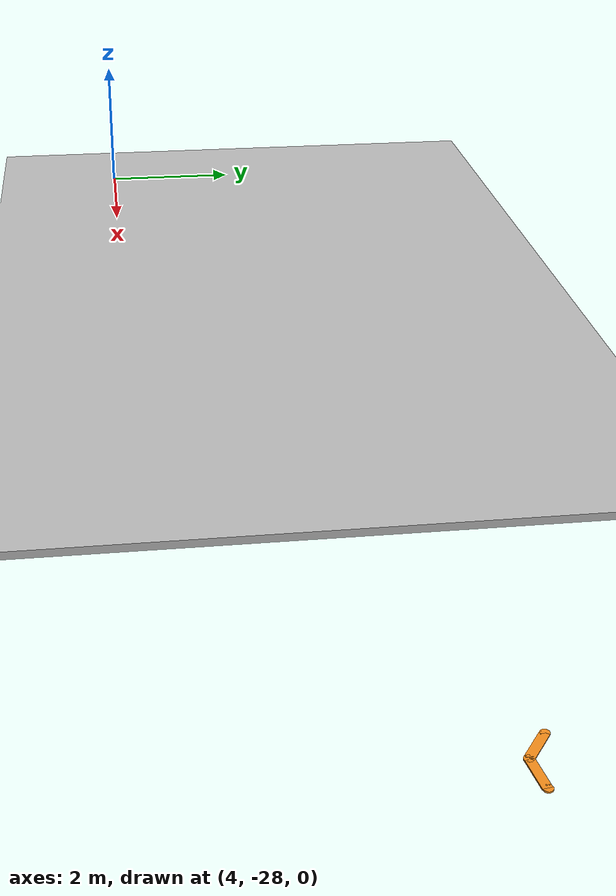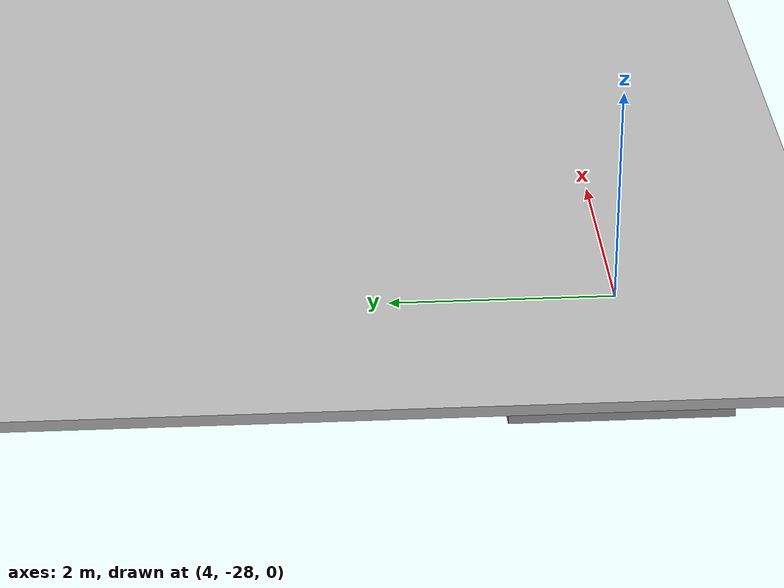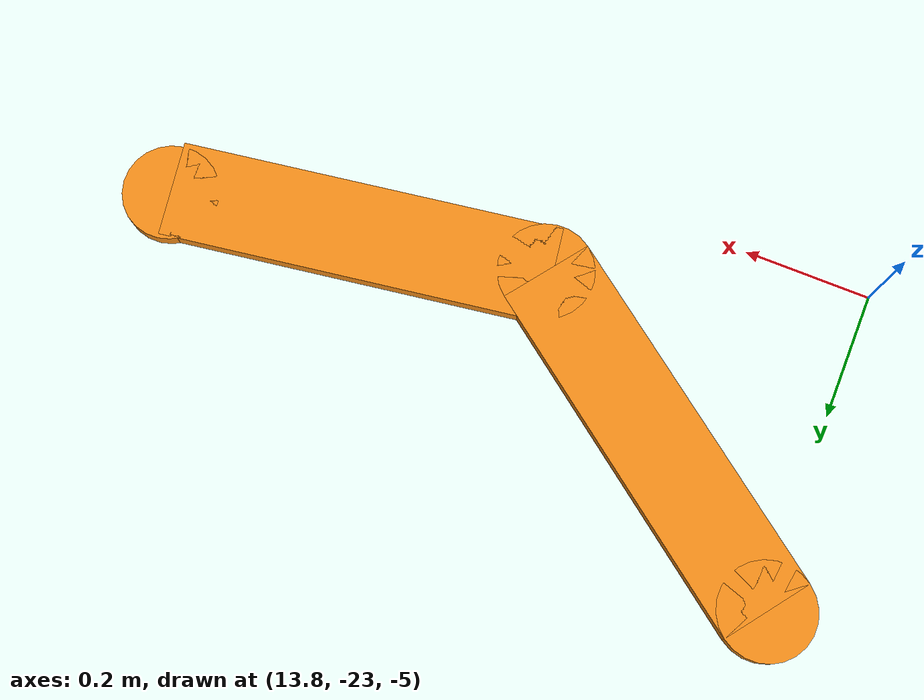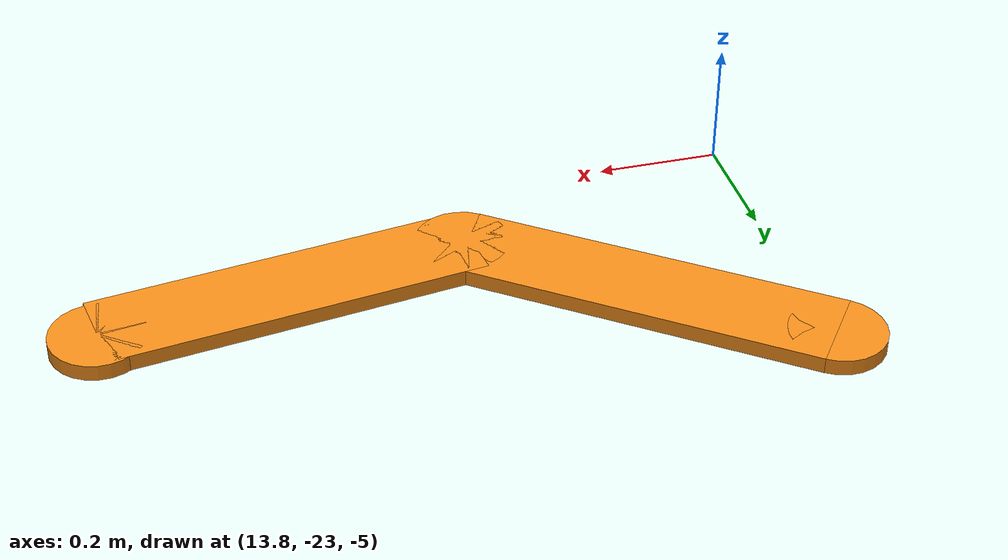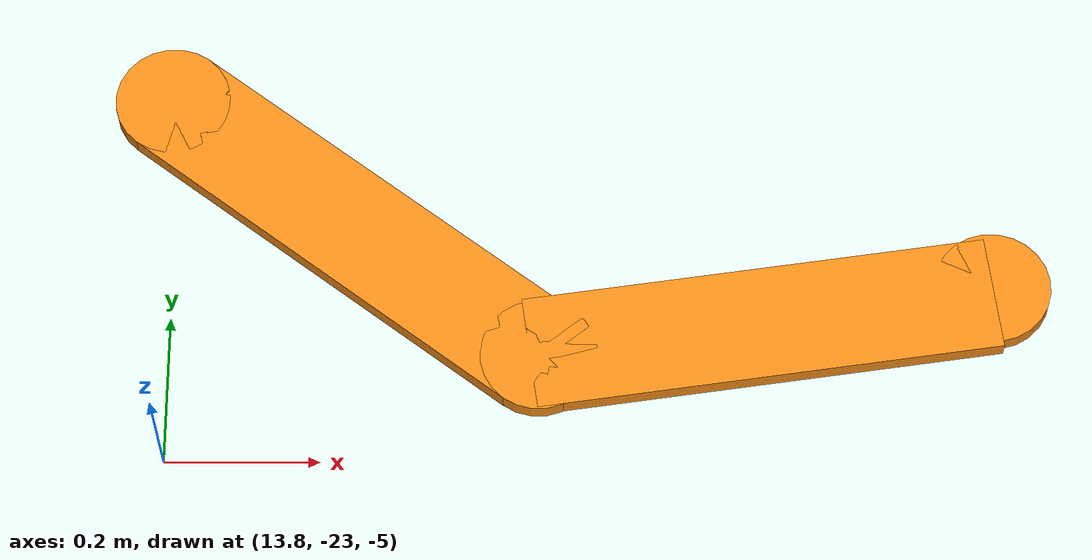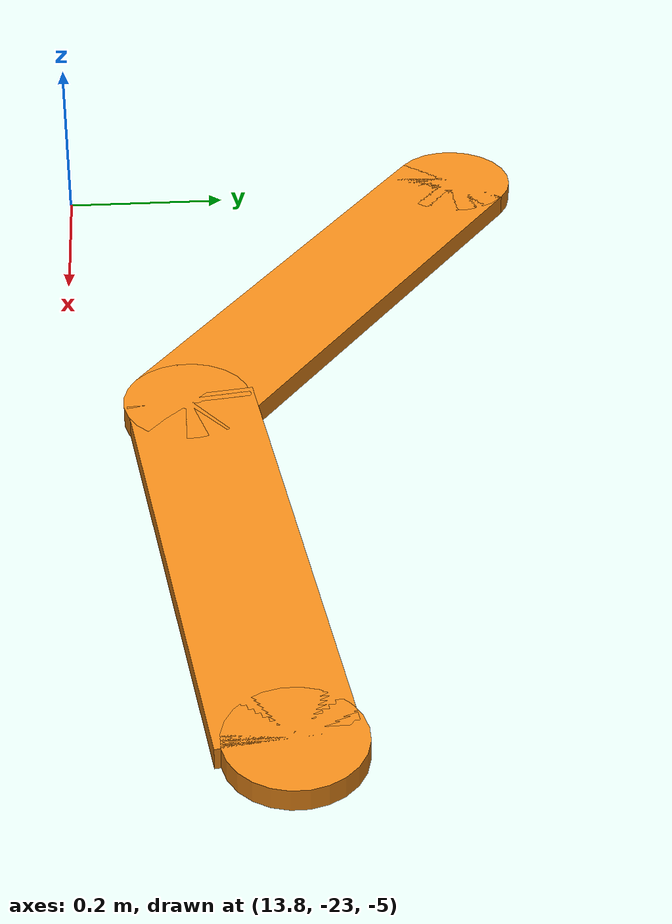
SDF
<sdf version="1.5">
 <world name="default">
  <physics name="default_physics" default="true" type="ode">
   <max_step_size>0.002</max_step_size>
   <real_time_factor>1</real_time_factor>
   <real_time_update_rate>500</real_time_update_rate>
   <ode><solver><type>quick</type><iters>50</iters><sor>0.5</sor></solver></ode>
  </physics>
  <scene>
   <ambient>0.01 0.01 0.01 1.0</ambient>
   <sky><clouds><speed>12</speed></clouds></sky>
   <shadows>1</shadows>
   <fog>
    <color>0.1 0.2 0.3 1.0</color>
    <type>linear</type>
    <density>0.001</density>
    <start>10</start>
    <end>200</end>
   </fog>
  </scene>
  <include><uri>model://sun</uri></include>
  <light type="directional" name="sun4">
   <pose>8 -19 10 1.75 0 2.9</pose>
   <diffuse>0.8 0.8 0.8 1</diffuse>
   <specular>0.2 0.2 0.2 1</specular>
   <attenuation>
    <range>1000</range>
    <constant>0.9</constant>
    <linear>0.01</linear>
    <quadratic>0.001</quadratic>
   </attenuation>
   <direction>-0.5 0.1 -0.9</direction>
  </light>
  <include><uri>model://transdec_ocean</uri><pose>0 0 -0.1 0 0 0</pose></include>
  <model name="dock_side_a">
   <static>true</static>
   <pose>4.8 -28.0 -0.67 0 0 0</pose>
   <link name="link">
    <collision name="collision"><geometry><box><size>3 2 0.35</size></box></geometry></collision>
    <visual name="visual">
     <geometry><box><size>3 2 0.35</size></box></geometry>
     <material>
      <script><uri>file://media/materials/scripts/gazebo.material</uri><name>Gazebo/Grey</name></script>
     </material>
    </visual>
   </link>
  </model>
  <include>
   <name>path_marker1_side_a</name>
   <pose>14.2 -22.6 -5.0 0 0 -1.13</pose>
   <uri>model://path_markers</uri>
  </include>
  <plugin name="gazebo_ros" filename="libgazebo_ros_state.so"><ros><namespace>/gazebo</namespace></ros></plugin>
  <plugin name="underwater_current_plugin" filename="libuuv_underwater_current_ros_plugin.so">
   <namespace>hydrodynamics</namespace>
   <constant_current>
    <topic>current_velocity</topic>
    <velocity><mean>0</mean><min>0</min><max>5</max><mu>0.0</mu><noiseAmp>0.0</noiseAmp></velocity>
    <horizontal_angle>
     <mean>0</mean>
     <min>-3.141592653589793238</min>
     <max>3.141592653589793238</max>
     <mu>0.0</mu>
     <noiseAmp>0.0</noiseAmp>
    </horizontal_angle>
    <vertical_angle>
     <mean>0</mean>
     <min>-3.141592653589793238</min>
     <max>3.141592653589793238</max>
     <mu>0.0</mu>
     <noiseAmp>0.0</noiseAmp>
    </vertical_angle>
   </constant_current>
  </plugin>
  <plugin name="sc_interface" filename="libuuv_sc_ros_interface_plugin.so"/>
 </world>
</sdf>

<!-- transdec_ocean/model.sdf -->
<sdf version='1.5'>
  <model name="ocean_box">
    <static>true</static>
    <link name="link">
      <visual name="surface">
        <cast_shadows>false</cast_shadows>
        <pose>0 0 0 0 0 0</pose>
        <geometry>
          <box>
            <size>100 100 .1</size>
          </box>
        </geometry>
        <material>
          <script>
            <uri>file://media/materials/scripts/water.material</uri>
            <name>UUVSimulator/StaticDeepWater</name>
          </script>
        </material>
      </visual>
    </link>
  </model>
</sdf>

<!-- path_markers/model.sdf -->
<sdf version='1.6'>
  <model name='path_markers'>
    <link name='link_0_clone'>
      <pose frame=''>-0.005961 -0.180662 0 0 0 -1.08343</pose>
      <self_collide>0</self_collide>
      <enable_wind>0</enable_wind>
      <kinematic>0</kinematic>
      <gravity>1</gravity>
      <inertial>
        <mass>1</mass>
        <pose frame=''>0 0 0 0 -0 0</pose>
        <inertia>
          <ixx>1</ixx>
          <ixy>0</ixy>
          <ixz>0</ixz>
          <iyy>1</iyy>
          <iyz>0</iyz>
          <izz>1</izz>
        </inertia>
      </inertial>
      <visual name='ModelPreview_1::link_0_clone::visual_4'>
        <pose frame=''>0 0.3048 0 0 -0 0</pose>
        <geometry>
          <cylinder>
            <radius>0.0762</radius>
            <length>0.026174</length>
          </cylinder>
        </geometry>
        <material>
          <script>
            <uri>file://media/materials/scripts/gazebo.material</uri>
            <name>Gazebo/Orange</name>
          </script>
          <shader type='vertex'>
            <normal_map>__default__</normal_map>
          </shader>
          <ambient>1 0.509 0.047 1</ambient>
          <diffuse>1 0.509 0.047 1</diffuse>
          <specular>0.5 0.5 0.5 1</specular>
          <emissive>0 0 0 1</emissive>
        </material>
        <transparency>0</transparency>
        <cast_shadows>1</cast_shadows>
      </visual>
      <visual name='ModelPreview_1::link_0_clone::visual_3'>
        <pose frame=''>0 -0.3048 0 0 -0 0</pose>
        <geometry>
          <cylinder>
            <radius>0.0762</radius>
            <length>0.026174</length>
          </cylinder>
        </geometry>
        <material>
          <script>
            <uri>file://media/materials/scripts/gazebo.material</uri>
            <name>Gazebo/Orange</name>
          </script>
          <shader type='vertex'>
            <normal_map>__default__</normal_map>
          </shader>
          <ambient>1 0.509 0.047 1</ambient>
          <diffuse>1 0.509 0.047 1</diffuse>
          <specular>0.5 0.5 0.5 1</specular>
          <emissive>0 0 0 1</emissive>
        </material>
        <transparency>0</transparency>
        <cast_shadows>1</cast_shadows>
      </visual>
      <visual name='ModelPreview_1::link_0_clone::visual_5'>
        <pose frame=''>-0.43 0.72 0 0 -0 0</pose>
        <geometry>
          <cylinder>
            <radius>0.0762</radius>
            <length>0.026174</length>
          </cylinder>
        </geometry>
        <material>
          <script>
            <uri>file://media/materials/scripts/gazebo.material</uri>
            <name>Gazebo/Orange</name>
          </script>
          <shader type='vertex'>
            <normal_map>__default__</normal_map>
          </shader>
          <ambient>1 0.509 0.047 1</ambient>
          <diffuse>1 0.509 0.047 1</diffuse>
          <specular>0.5 0.5 0.5 1</specular>
          <emissive>0 0 0 1</emissive>
        </material>
        <transparency>0</transparency>
        <cast_shadows>1</cast_shadows>
      </visual>
      <visual name='ModelPreview_1::link_0_clone::visual_1'>
        <pose frame=''>-0.21 0.5096 0 0 0 -2.3562</pose>
        <geometry>
          <box>
            <size>0.1524 0.6096 0.026174</size>
          </box>
        </geometry>
        <material>
          <script>
            <uri>file://media/materials/scripts/gazebo.material</uri>
            <name>Gazebo/Orange</name>
          </script>
          <shader type='vertex'>
            <normal_map>__default__</normal_map>
          </shader>
          <ambient>1 0.509 0.047 1</ambient>
          <diffuse>1 0.509 0.047 1</diffuse>
          <specular>0.5 0.5 0.5 1</specular>
          <emissive>0 0 0 1</emissive>
        </material>
        <transparency>0</transparency>
        <cast_shadows>1</cast_shadows>
      </visual>
      <visual name='visual'>
        <pose frame=''>0 0 0 0 -0 0</pose>
        <geometry>
          <box>
            <size>0.1524 0.6096 0.026174</size>
          </box>
        </geometry>
        <material>
          <script>
            <uri>file://media/materials/scripts/gazebo.material</uri>
            <name>Gazebo/Orange</name>
          </script>
          <shader type='vertex'>
            <normal_map>__default__</normal_map>
          </shader>
          <ambient>1 0.509 0.047 1</ambient>
          <diffuse>1 0.509 0.047 1</diffuse>
          <specular>0.5 0.5 0.5 1</specular>
          <emissive>0 0 0 1</emissive>
        </material>
        <transparency>0</transparency>
        <cast_shadows>1</cast_shadows>
      </visual>
      <collision name='collision'>
        <laser_retro>0</laser_retro>
        <max_contacts>10</max_contacts>
        <pose frame=''>0 0 0 0 -0 0</pose>
        <geometry>
          <box>
            <size>0.1524 0.6096 0.026174</size>
          </box>
        </geometry>
        <surface>
          <friction>
            <ode>
              <mu>1</mu>
              <mu2>1</mu2>
              <fdir1>0 0 0</fdir1>
              <slip1>0</slip1>
              <slip2>0</slip2>
            </ode>
            <torsional>
              <coefficient>1</coefficient>
              <patch_radius>0</patch_radius>
              <surface_radius>0</surface_radius>
              <use_patch_radius>1</use_patch_radius>
              <ode>
                <slip>0</slip>
              </ode>
            </torsional>
          </friction>
          <bounce>
            <restitution_coefficient>0</restitution_coefficient>
            <threshold>1e+06</threshold>
          </bounce>
          <contact>
            <collide_without_contact>0</collide_without_contact>
            <collide_without_contact_bitmask>1</collide_without_contact_bitmask>
            <collide_bitmask>1</collide_bitmask>
            <ode>
              <soft_cfm>0</soft_cfm>
              <soft_erp>0.2</soft_erp>
              <kp>1e+13</kp>
              <kd>1</kd>
              <max_vel>0.01</max_vel>
              <min_depth>0</min_depth>
            </ode>
            <bullet>
              <split_impulse>1</split_impulse>
              <split_impulse_penetration_threshold>-0.01</split_impulse_penetration_threshold>
              <soft_cfm>0</soft_cfm>
              <soft_erp>0.2</soft_erp>
              <kp>1e+13</kp>
              <kd>1</kd>
            </bullet>
          </contact>
        </surface>
      </collision>
      <collision name='collision_1'>
        <laser_retro>0</laser_retro>
        <max_contacts>10</max_contacts>
        <pose frame=''>-0.25 0.6096 0 0 0 -2.3562</pose>
        <geometry>
          <box>
            <size>0.1524 0.6096 0.026174</size>
          </box>
        </geometry>
        <surface>
          <friction>
            <ode>
              <mu>1</mu>
              <mu2>1</mu2>
              <fdir1>0 0 0</fdir1>
              <slip1>0</slip1>
              <slip2>0</slip2>
            </ode>
            <torsional>
              <coefficient>1</coefficient>
              <patch_radius>0</patch_radius>
              <surface_radius>0</surface_radius>
              <use_patch_radius>1</use_patch_radius>
              <ode>
                <slip>0</slip>
              </ode>
            </torsional>
          </friction>
          <bounce>
            <restitution_coefficient>0</restitution_coefficient>
            <threshold>1e+06</threshold>
          </bounce>
          <contact>
            <collide_without_contact>0</collide_without_contact>
            <collide_without_contact_bitmask>1</collide_without_contact_bitmask>
            <collide_bitmask>1</collide_bitmask>
            <ode>
              <soft_cfm>0</soft_cfm>
              <soft_erp>0.2</soft_erp>
              <kp>1e+13</kp>
              <kd>1</kd>
              <max_vel>0.01</max_vel>
              <min_depth>0</min_depth>
            </ode>
            <bullet>
              <split_impulse>1</split_impulse>
              <split_impulse_penetration_threshold>-0.01</split_impulse_penetration_threshold>
              <soft_cfm>0</soft_cfm>
              <soft_erp>0.2</soft_erp>
              <kp>1e+13</kp>
              <kd>1</kd>
            </bullet>
          </contact>
        </surface>
      </collision>
    </link>
    <static>1</static>
    <allow_auto_disable>1</allow_auto_disable>
  </model>
</sdf>
